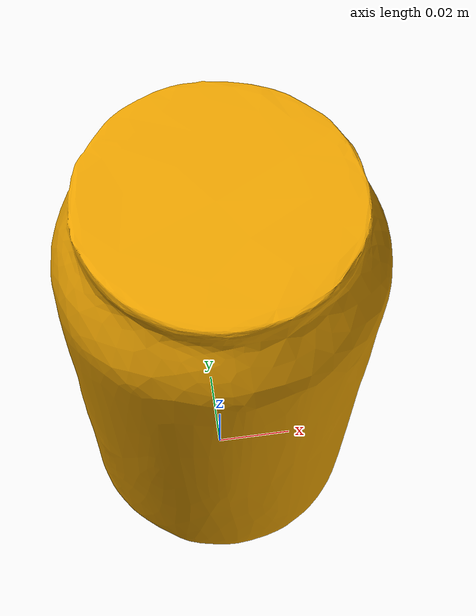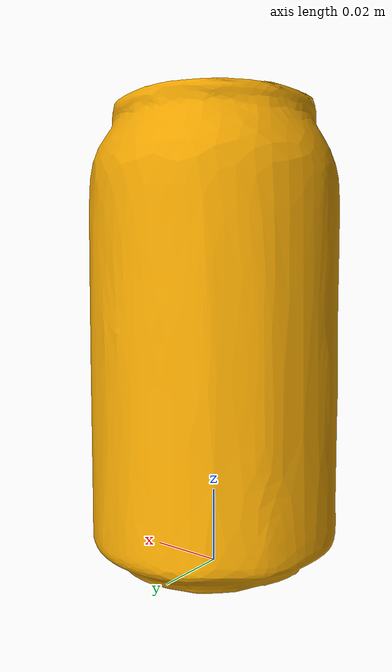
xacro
<robot  xmlns:xacro="http://ros.org/wiki/xacro" name="coke_can_model">
  <xacro:include filename="$(find mobipick_description)/urdf/common_properties.urdf.xacro" />

  <xacro:property name="mass" value="0.380" />
  <xacro:property name="radius" value="0.0335" />
  <xacro:property name="height" value="0.1239" />

  <link name="coke_can">
    <xacro:cylinder_inertial radius="${radius}" length="${height}" mass="${mass}">
      <origin xyz="0 0 ${height/2}" rpy="0 0 0" />
    </xacro:cylinder_inertial>
    <visual>
      <origin xyz="0 0 0" rpy="0 0 0" />
      <geometry>
        <mesh filename="package://mobipick_gazebo/meshes/coke_can.dae" scale="0.001 0.001 0.001" />
      </geometry>
    </visual>
    <collision>
      <origin xyz="0 0 0" rpy="0 0 0" />
      <geometry>
        <mesh filename="package://mobipick_gazebo/meshes/coke_can.dae" scale="0.001 0.001 0.001" />
      </geometry>
    </collision>
  </link>

  <gazebo reference="coke_can">
    <mu1>5.0</mu1> <!-- high friction -->
    <mu2>5.0</mu2>
    <kp>1e+06</kp> <!-- high stiffness -->
    <kd>1.0</kd> <!-- normal damping -->
    <minDepth>0.002</minDepth> <!-- persistent contact with the gripper pads, see robotiq_fingertips_65mm.xacro -->
  </gazebo>

</robot>

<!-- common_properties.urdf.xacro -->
<!--
  Various useful properties such as constants and materials
 -->
<robot name="xacro_properties" xmlns:xacro="http://ros.org/wiki/xacro">
  <!-- #################### RViz materials #################### -->
  <xacro:property name="material_white">
    <material name="white">
      <color rgba="1 1 1 1"/>
    </material>
  </xacro:property>
  <xacro:property name="material_almost_white">
    <material name="almost_white">
      <color rgba="0.9 0.9 0.9 1" />
    </material>
  </xacro:property>
  <xacro:property name="material_grey">
    <material name="grey">
      <color rgba="0.5 0.5 0.5 1"/>
    </material>
  </xacro:property>
  <xacro:property name="material_light_grey">
    <material name="light_grey">
      <color rgba="0.6 0.6 0.6 1"/>
    </material>
  </xacro:property>
  <xacro:property name="material_dark_grey">
    <material name="dark_grey">
      <color rgba="0.3 0.3 0.3 1"/>
    </material>
  </xacro:property>
  <xacro:property name="material_black">
    <material name="black">
      <color rgba="0.1 0.1 0.1 1"/>
    </material>
  </xacro:property>
  <xacro:property name="material_aluminum">
    <material name="aluminum">
      <color rgba="0.8 0.8 0.8 1" />
    </material>
  </xacro:property>
  <xacro:property name="material_silver">
    <material name="silver">
      <color rgba="0.79 0.82 0.93 1" />
    </material>
  </xacro:property>

  <!-- #################### inertials with origin #################### -->
  <!-- see https://secure.wikimedia.org/wikipedia/en/wiki/List_of_moment_of_inertia_tensors -->
  <xacro:macro name="sphere_inertial" params="radius mass *origin">
    <inertial>
      <mass value="${mass}" />
      <xacro:insert_block name="origin" />
      <inertia ixx="${0.4 * mass * radius * radius}" ixy="0.0" ixz="0.0"
        iyy="${0.4 * mass * radius * radius}" iyz="0.0"
        izz="${0.4 * mass * radius * radius}" />
    </inertial>
  </xacro:macro>

  <xacro:macro name="cylinder_inertial" params="radius length mass *origin">
    <inertial>
      <mass value="${mass}" />
      <xacro:insert_block name="origin" />
      <inertia ixx="${0.0833333 * mass * (3 * radius * radius + length * length)}" ixy="0.0" ixz="0.0"
        iyy="${0.0833333 * mass * (3 * radius * radius + length * length)}" iyz="0.0"
        izz="${0.5 * mass * radius * radius}" />
    </inertial>
  </xacro:macro>

  <xacro:macro name="box_inertial" params="x y z mass *origin">
    <inertial>
      <mass value="${mass}" />
      <xacro:insert_block name="origin" />
      <inertia ixx="${0.0833333 * mass * (y*y + z*z)}" ixy="0.0" ixz="0.0"
        iyy="${0.0833333 * mass * (x*x + z*z)}" iyz="0.0"
        izz="${0.0833333 * mass * (x*x + y*y)}" />
    </inertial>
  </xacro:macro>
</robot>
